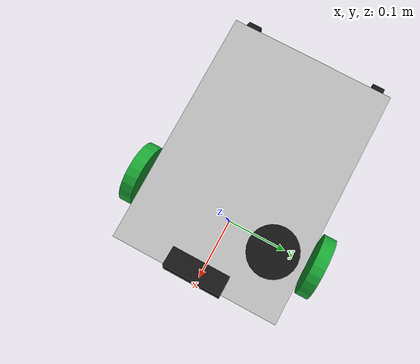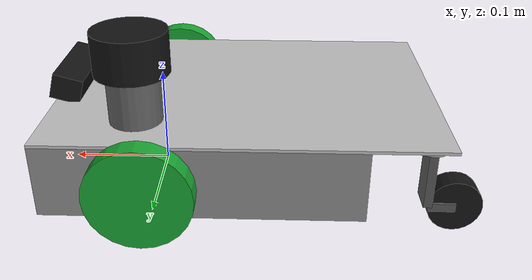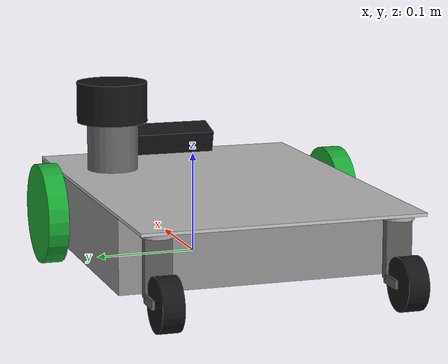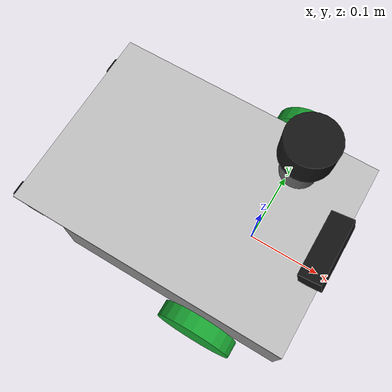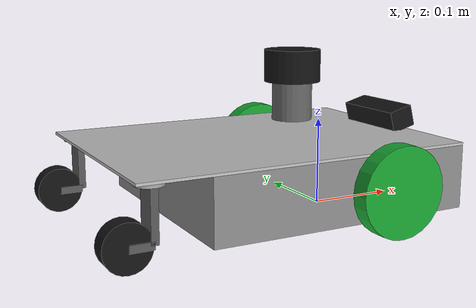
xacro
<?xml version="1.0"?>

<robot xmlns:xacro="http://www.ros.org/wiki/xacro"
       name="edgeai_robot_real">

  <xacro:arg name="robot_id" default="robot_1"/>
  <xacro:property name="robot_id" value="$(arg robot_id)"/>
  <xacro:property name="prefix" value="${robot_id}/"/>

  <!-- Parameters -->

  <!-- Lower folded-aluminum chassis -->
  <xacro:property name="lower_length" value="0.300"/>
  <xacro:property name="lower_width"  value="0.265"/>
  <xacro:property name="lower_height" value="0.070"/>

  <!-- Upper aluminum plate -->
  <xacro:property name="plate_length"    value="0.375"/>
  <xacro:property name="plate_width"     value="0.265"/>
  <xacro:property name="plate_thickness" value="0.003"/>

  <!-- Temporary mass -->
  <xacro:property name="base_mass" value="5.0"/>

  <!-- Drive wheels -->
  <xacro:property name="wheel_radius" value="0.049"/>
  <xacro:property name="wheel_width" value="0.020"/>
  <xacro:property name="wheel_separation" value="0.300"/>
  <xacro:property name="wheel_x" value="0.0875"/>
  <xacro:property name="wheel_mass" value="0.20"/>

    <!-- Rear caster parameters -->

  <!-- Caster wheel -->
  <xacro:property name="caster_wheel_radius" value="0.025"/>
  <xacro:property name="caster_wheel_width"  value="0.020"/>
  <xacro:property name="caster_wheel_mass"   value="0.05"/>

  <!-- Swivel pivot position -->
  <xacro:property name="caster_x" value="-0.1675"/>
  <xacro:property name="caster_y" value="0.1125"/>

  <!-- Estimated trailing offset: pivot -> wheel axle -->
  <xacro:property name="caster_offset" value="0.025"/>

  <!-- Simplified fork geometry -->
  <xacro:property name="caster_fork_width"     value="0.025"/>
  <xacro:property name="caster_fork_thickness" value="0.008"/>

  <!-- Swivel bearing -->
<xacro:property name="caster_bearing_radius" value="0.015"/>
<xacro:property name="caster_bearing_height" value="0.005"/>

  <!-- Ground reference -->

  <link name="base_footprint"/>

  <!-- Main chassis -->

  <link name="base_link">

    <!-- Lower folded-aluminum chassis -->
    <!-- Front edge aligned with upper plate -->

    <visual name="lower_chassis_visual">
      <origin xyz="0.0375 0 0" rpy="0 0 0"/>
      <geometry>
        <box size="${lower_length} ${lower_width} ${lower_height}"/>
      </geometry>
      <material name="lower_chassis_gray">
        <color rgba="0.55 0.55 0.55 1.0"/>
      </material>
    </visual>

    <collision name="lower_chassis_collision">
      <origin xyz="0.0375 0 0" rpy="0 0 0"/>
      <geometry>
        <box size="${lower_length} ${lower_width} ${lower_height}"/>
      </geometry>
    </collision>

    <!-- Upper aluminum plate -->

    <visual name="upper_plate_visual">
      <origin xyz="0 0 0.0365" rpy="0 0 0"/>
      <geometry>
        <box size="${plate_length} ${plate_width} ${plate_thickness}"/>
      </geometry>
      <material name="upper_plate_gray">
        <color rgba="0.75 0.75 0.75 1.0"/>
      </material>
    </visual>

    <collision name="upper_plate_collision">
      <origin xyz="0 0 0.0365" rpy="0 0 0"/>
      <geometry>
        <box size="${plate_length} ${plate_width} ${plate_thickness}"/>
      </geometry>
    </collision>

    <!-- Temporary inertia -->

    <inertial>
      <origin xyz="0 0 0" rpy="0 0 0"/>
      <mass value="${base_mass}"/>
      <inertia
        ixx="0.035"
        ixy="0"
        ixz="0"
        iyy="0.060"
        iyz="0"
        izz="0.085"/>
    </inertial>

  </link>

  <!-- Fixed connection between ground reference and chassis -->

  <joint name="base_footprint_joint" type="fixed">
    <parent link="base_footprint"/>
    <child link="base_link"/>
    <origin xyz="${-wheel_x} 0 ${wheel_radius}" rpy="0 0 0"/>
  </joint>

  <!-- Left drive wheel -->

  <link name="left_wheel_link">

    <visual>
      <origin xyz="0 0 0" rpy="${pi/2} 0 0"/>
      <geometry>
        <cylinder radius="${wheel_radius}" length="${wheel_width}"/>
      </geometry>
      <material name="drive_wheel_green">
        <color rgba="0.10 0.65 0.20 1.0"/>
      </material>
    </visual>

    <collision>
      <origin xyz="0 0 0" rpy="${pi/2} 0 0"/>
      <geometry>
        <cylinder radius="${wheel_radius}" length="${wheel_width}"/>
      </geometry>
    </collision>

    <inertial>
      <mass value="${wheel_mass}"/>
      <inertia
        ixx="0.00013"
        ixy="0"
        ixz="0"
        iyy="0.00024"
        iyz="0"
        izz="0.00013"/>
    </inertial>

  </link>

  <joint name="left_wheel_joint" type="continuous">
    <parent link="base_link"/>
    <child link="left_wheel_link"/>

    <origin
      xyz="${wheel_x} ${wheel_separation/2} 0"
      rpy="0 0 0"/>

    <axis xyz="0 1 0"/>
  </joint>

  <!-- Right drive wheel -->

  <link name="right_wheel_link">

    <visual>
      <origin xyz="0 0 0" rpy="${pi/2} 0 0"/>
      <geometry>
        <cylinder radius="${wheel_radius}" length="${wheel_width}"/>
      </geometry>
      <material name="drive_wheel_green">
        <color rgba="0.10 0.65 0.20 1.0"/>
      </material>
    </visual>

    <collision>
      <origin xyz="0 0 0" rpy="${pi/2} 0 0"/>
      <geometry>
        <cylinder radius="${wheel_radius}" length="${wheel_width}"/>
      </geometry>
    </collision>

    <inertial>
      <mass value="${wheel_mass}"/>
      <inertia
        ixx="0.00013"
        ixy="0"
        ixz="0"
        iyy="0.00024"
        iyz="0"
        izz="0.00013"/>
    </inertial>

  </link>

  <joint name="right_wheel_joint" type="continuous">
    <parent link="base_link"/>
    <child link="right_wheel_link"/>

    <origin
      xyz="${wheel_x} ${-wheel_separation/2} 0"
      rpy="0 0 0"/>

    <axis xyz="0 1 0"/>
  </joint>

   <!-- Left rear caster -->

  <!-- Swivel / fork link -->
  <link name="left_caster_fork_link">

  <!-- Swivel bearing -->
  <visual name="left_caster_bearing_visual">

    <!-- Top surface touches the underside of the upper plate -->
    <origin
      xyz="0 0 ${-caster_bearing_height/2}"
      rpy="0 0 0"/>

    <geometry>
      <cylinder
        radius="${caster_bearing_radius}"
        length="${caster_bearing_height}"/>
    </geometry>

    <material name="caster_bearing_silver">
      <color rgba="0.65 0.65 0.65 1.0"/>
    </material>

  </visual>

    <!-- Vertical part of fork -->
    <visual name="left_caster_vertical_visual">
      <origin xyz="0 0 -0.0295" rpy="0 0 0"/>

      <geometry>
        <box size="
          ${caster_fork_thickness}
          ${caster_fork_width}
          0.059"/>
      </geometry>

      <material name="caster_fork_gray">
        <color rgba="0.35 0.35 0.35 1.0"/>
      </material>
    </visual>

    <!-- Horizontal trailing arm -->
    <visual name="left_caster_arm_visual">

      <origin
        xyz="${-caster_offset/2} 0 -0.059"
        rpy="0 0 0"/>

      <geometry>
        <box size="
          ${caster_offset}
          ${caster_fork_width}
          ${caster_fork_thickness}"/>
      </geometry>

      <material name="caster_fork_gray"/>
    </visual>

    <inertial>
      <origin xyz="0 0 -0.0295" rpy="0 0 0"/>
      <mass value="0.05"/>

      <inertia
        ixx="0.00002"
        ixy="0"
        ixz="0"
        iyy="0.00002"
        iyz="0"
        izz="0.00002"/>
    </inertial>

  </link>

  <!-- Caster steering -->
  <joint name="left_caster_swivel_joint"
         type="continuous">

    <parent link="base_link"/>
    <child link="left_caster_fork_link"/>

    <origin
      xyz="${caster_x} ${caster_y} 0.035"
      rpy="0 0 0"/>

    <!-- Vertical steering axis -->
    <axis xyz="0 0 1"/>

  </joint>

  <!-- Left caster wheel -->

  <link name="left_caster_wheel_link">

    <visual>

      <origin xyz="0 0 0"
              rpy="${pi/2} 0 0"/>

      <geometry>
        <cylinder
          radius="${caster_wheel_radius}"
          length="${caster_wheel_width}"/>
      </geometry>

      <material name="caster_wheel_black">
        <color rgba="0.08 0.08 0.08 1.0"/>
      </material>

    </visual>

    <collision>

      <origin xyz="0 0 0"
              rpy="${pi/2} 0 0"/>

      <geometry>
        <cylinder
          radius="${caster_wheel_radius}"
          length="${caster_wheel_width}"/>
      </geometry>

    </collision>

    <inertial>

      <mass value="${caster_wheel_mass}"/>

      <inertia
        ixx="0.00001"
        ixy="0"
        ixz="0"
        iyy="0.00002"
        iyz="0"
        izz="0.00001"/>

    </inertial>

  </link>

  <!-- Caster wheel rolling joint -->

  <joint name="left_caster_wheel_joint"
         type="continuous">

    <parent link="left_caster_fork_link"/>
    <child link="left_caster_wheel_link"/>

    <origin
      xyz="${-caster_offset} 0 -0.059"
      rpy="0 0 0"/>

    <axis xyz="0 1 0"/>

  </joint>

    <!-- Right rear caster -->

  <!-- Swivel / fork link -->
  <link name="right_caster_fork_link">

  <!-- Swivel bearing -->
  <visual name="right_caster_bearing_visual">

    <!-- Top surface touches the underside of the upper plate -->
    <origin
      xyz="0 0 ${-caster_bearing_height/2}"
      rpy="0 0 0"/>

    <geometry>
      <cylinder
        radius="${caster_bearing_radius}"
        length="${caster_bearing_height}"/>
    </geometry>

    <material name="caster_bearing_silver"/>

  </visual>

    <!-- Vertical part of fork -->
    <visual name="right_caster_vertical_visual">

      <origin xyz="0 0 -0.0295"
              rpy="0 0 0"/>

      <geometry>
        <box size="
          ${caster_fork_thickness}
          ${caster_fork_width}
          0.059"/>
      </geometry>

      <material name="caster_fork_gray"/>
    </visual>

    <!-- Horizontal trailing arm -->
    <visual name="right_caster_arm_visual">

      <origin
        xyz="${-caster_offset/2} 0 -0.059"
        rpy="0 0 0"/>

      <geometry>
        <box size="
          ${caster_offset}
          ${caster_fork_width}
          ${caster_fork_thickness}"/>
      </geometry>

      <material name="caster_fork_gray"/>
    </visual>

    <inertial>

      <origin xyz="0 0 -0.0295"
              rpy="0 0 0"/>

      <mass value="0.05"/>

      <inertia
        ixx="0.00002"
        ixy="0"
        ixz="0"
        iyy="0.00002"
        iyz="0"
        izz="0.00002"/>

    </inertial>

  </link>

  <!-- Caster steering -->
  <joint name="right_caster_swivel_joint"
         type="continuous">

    <parent link="base_link"/>
    <child link="right_caster_fork_link"/>

    <origin
      xyz="${caster_x} ${-caster_y} 0.035"
      rpy="0 0 0"/>

    <axis xyz="0 0 1"/>

  </joint>

  <!-- Right caster wheel -->

  <link name="right_caster_wheel_link">

    <visual>

      <origin xyz="0 0 0"
              rpy="${pi/2} 0 0"/>

      <geometry>
        <cylinder
          radius="${caster_wheel_radius}"
          length="${caster_wheel_width}"/>
      </geometry>

      <material name="caster_wheel_black"/>

    </visual>

    <collision>

      <origin xyz="0 0 0"
              rpy="${pi/2} 0 0"/>

      <geometry>
        <cylinder
          radius="${caster_wheel_radius}"
          length="${caster_wheel_width}"/>
      </geometry>

    </collision>

    <inertial>

      <mass value="${caster_wheel_mass}"/>

      <inertia
        ixx="0.00001"
        ixy="0"
        ixz="0"
        iyy="0.00002"
        iyz="0"
        izz="0.00001"/>

    </inertial>

  </link>

  <!-- Caster wheel rolling joint -->

  <joint name="right_caster_wheel_joint"
         type="continuous">

    <parent link="right_caster_fork_link"/>
    <child link="right_caster_wheel_link"/>

    <origin
      xyz="${-caster_offset} 0 -0.059"
      rpy="0 0 0"/>

    <axis xyz="0 1 0"/>

  </joint>

  <!-- LiDAR mounting support -->

  <link name="lidar_support_link">

    <visual>
      <!--
        Support bottom: z = 0.038 m
        Support top:    z = 0.086 m
        Height:         0.048 m
      -->
      <geometry>
        <cylinder radius="0.025" length="0.048"/>
      </geometry>

      <material name="lidar_support_gray">
        <color rgba="0.4 0.4 0.4 1.0"/>
      </material>
    </visual>

    <collision>
      <geometry>
        <cylinder radius="0.025" length="0.048"/>
      </geometry>
    </collision>

  </link>

  <joint name="lidar_support_joint" type="fixed">
    <parent link="base_link"/>
    <child link="lidar_support_link"/>

    <!--
      Center height:
      0.038 + 0.048/2 = 0.062 m
    -->
    <origin xyz="0.10 0.08 0.062" rpy="0 0 0"/>
  </joint>

<!-- RGB-D Camera body                                      -->

<link name="camera_link">

  <visual>
    <geometry>
      <box size="0.030 0.090 0.025"/>
    </geometry>

    <material name="camera_black">
      <color rgba="0.08 0.08 0.08 1.0"/>
    </material>
  </visual>

  <collision>
    <geometry>
      <box size="0.030 0.090 0.025"/>
    </geometry>
  </collision>

</link>

<joint name="camera_joint" type="fixed">

  <parent link="base_link"/>
  <child link="camera_link"/>

  <origin
    xyz="0.175 0 0.051"
    rpy="0 -0.26 0"/>

</joint>

<!-- RGB-D Camera frames                                    -->

<link name="camera_optical_frame"/>

<joint name="camera_optical_joint" type="fixed">

  <parent link="camera_link"/>
  <child link="camera_optical_frame"/>

  <!-- ROS optical frame convention:
       x right, y down, z forward -->
  <origin
    xyz="0 0 0"
    rpy="-1.5708 0 -1.5708"/>

</joint>

<!-- Gazebo RGB-D Camera sensor                             -->

<gazebo reference="camera_link">

  <sensor name="rgbd_camera" type="rgbd_camera">

    <always_on>true</always_on>
    <update_rate>30</update_rate>

    <topic>/${robot_id}/camera</topic>

    <gz_frame_id>${prefix}camera_link</gz_frame_id>

    <camera>

      <optical_frame_id>${prefix}camera_optical_frame</optical_frame_id>

      <horizontal_fov>1.047</horizontal_fov>

      <image>
        <width>640</width>
        <height>480</height>
        <format>R8G8B8</format>
      </image>

      <clip>
        <near>0.10</near>
        <far>10.0</far>
      </clip>

    </camera>

  </sensor>

</gazebo>

  <!-- LiDAR body -->

  <link name="lidar_link">

    <visual>
      <geometry>
        <cylinder radius="0.035" length="0.040"/>
      </geometry>

      <material name="lidar_black">
        <color rgba="0.08 0.08 0.08 1.0"/>
      </material>
    </visual>

    <collision>
      <geometry>
        <cylinder radius="0.035" length="0.040"/>
      </geometry>
    </collision>

  </link>

  <joint name="lidar_joint" type="fixed">
    <parent link="lidar_support_link"/>
    <child link="lidar_link"/>

    <!--
      Support center = 0.062 m
      Support top    = 0.086 m
      LiDAR center   = 0.106 m

      Relative offset:
      0.106 - 0.062 = 0.044 m
    -->
    <origin xyz="0 0 0.044" rpy="0 0 0"/>
  </joint>

  <!-- Gazebo LiDAR sensor                                   -->

  <gazebo reference="lidar_link">

    <sensor name="lidar_sensor" type="gpu_lidar">

      <pose>0 0 0 0 0 0</pose>

      <!-- Gazebo Transport topic -->
      <topic>/${robot_id}/scan</topic>

      <!-- Frame carried in the LiDAR message -->
      <gz_frame_id>${prefix}lidar_link</gz_frame_id>

      <update_rate>10</update_rate>

      <lidar>

        <scan>
          <horizontal>
            <samples>360</samples>
            <resolution>1</resolution>
            <min_angle>-3.14159</min_angle>
            <max_angle>3.14159</max_angle>
          </horizontal>
        </scan>

        <range>
          <min>0.15</min>
          <max>12.0</max>
          <resolution>0.01</resolution>
        </range>

      </lidar>

      <always_on>true</always_on>
      <visualize>true</visualize>

    </sensor>

  </gazebo>

  <!-- Gazebo DiffDrive plugin -->

  <gazebo>
    <plugin
      filename="gz-sim-diff-drive-system"
      name="gz::sim::systems::DiffDrive">

      <!-- Drive wheel joints -->
      <left_joint>left_wheel_joint</left_joint>
      <right_joint>right_wheel_joint</right_joint>

      <!-- Robot geometry -->
      <wheel_separation>${wheel_separation}</wheel_separation>
      <wheel_radius>${wheel_radius}</wheel_radius>

      <!-- Gazebo command / odometry topics -->
      <topic>/${robot_id}/cmd_vel</topic>
      <odom_topic>/${robot_id}/odom</odom_topic>
      <tf_topic>/${robot_id}/tf</tf_topic>

      <!-- Odometry frame -->
      <frame_id>${prefix}odom</frame_id>
      <child_frame_id>${prefix}base_footprint</child_frame_id>

      <!-- Physical limits of the drive (development values; replace with the
           measured motor limits). Competition speed limits are enforced by
           safety_watchdog (ADR-0003), not here. -->
      <max_linear_velocity>0.30</max_linear_velocity>
      <max_angular_velocity>1.00</max_angular_velocity>
      <max_linear_acceleration>0.50</max_linear_acceleration>
      <max_angular_acceleration>1.50</max_angular_acceleration>

      <!-- Odometry publishing -->
      <odom_publish_frequency>50</odom_publish_frequency>

    </plugin>
  </gazebo>

  <gazebo>
  <plugin
    filename="gz-sim-joint-state-publisher-system"
    name="gz::sim::systems::JointStatePublisher">
    <topic>/${robot_id}/joint_states</topic>
  </plugin>
</gazebo>

  <!-- IMU (PhidgetSpatial Precision on the real robot)       -->

  <!-- Mounting position is a placeholder at the base_link origin until it is
       measured on the real robot. -->
  <link name="imu_link"/>

  <joint name="imu_joint" type="fixed">
    <parent link="base_link"/>
    <child link="imu_link"/>
    <origin xyz="0 0 0" rpy="0 0 0"/>
  </joint>

  <gazebo reference="imu_link">
    <sensor name="imu_sensor" type="imu">
      <always_on>true</always_on>
      <update_rate>100</update_rate>
      <topic>/${robot_id}/imu</topic>
      <gz_frame_id>${prefix}imu_link</gz_frame_id>
      <!-- Placeholder Gaussian noise of a typical MEMS IMU, not taken from the
           PhidgetSpatial datasheet; replace after hardware characterisation. -->
      <imu>
        <angular_velocity>
          <x><noise type="gaussian"><mean>0</mean><stddev>0.002</stddev></noise></x>
          <y><noise type="gaussian"><mean>0</mean><stddev>0.002</stddev></noise></y>
          <z><noise type="gaussian"><mean>0</mean><stddev>0.002</stddev></noise></z>
        </angular_velocity>
        <linear_acceleration>
          <x><noise type="gaussian"><mean>0</mean><stddev>0.02</stddev></noise></x>
          <y><noise type="gaussian"><mean>0</mean><stddev>0.02</stddev></noise></y>
          <z><noise type="gaussian"><mean>0</mean><stddev>0.02</stddev></noise></z>
        </linear_acceleration>
      </imu>
    </sensor>
  </gazebo>
</robot>
